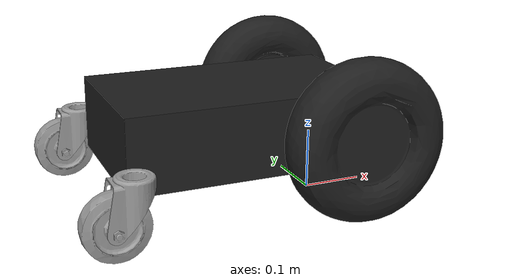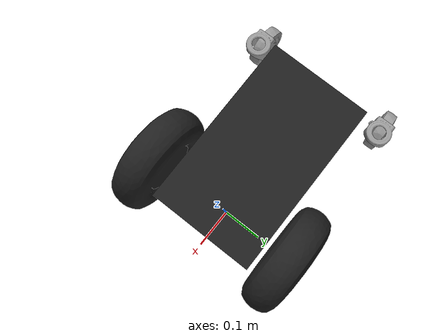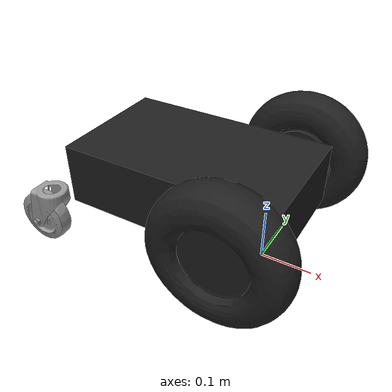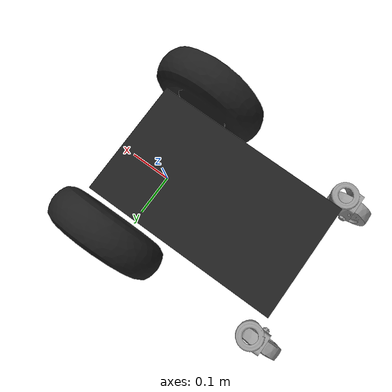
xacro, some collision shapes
<?xml version="1.0" ?>
<robot name="2WD_rover" xmlns:xacro="http://ros.org/wiki/xacro">
  <xacro:include filename="$(find rr_openrover_description)/urdf/common_properties.xacro"/>
  <xacro:include filename="$(find rr_openrover_description)/urdf/2WD_rover.gazebo.xacro"/>

  <link name="base_footprint"/>

  <link name="base_link"/>

  <joint name="base_joint" type="fixed">
    <parent link="base_footprint"/>
    <child link="base_link"/>
    <origin xyz="0 0 0" rpy="0 0 0"/>
  </joint>

  <link name="chassis_link">
    <visual>
      <origin xyz="0 0 0" rpy="${pi / 2} 0 ${pi / 2}"/>
      <geometry>
        <mesh filename="package://rr_openrover_description/meshes/2WD_Rover/2WDCore.stl" scale="0.001 0.001 0.001"/>
      </geometry>
      <material name="dark"/>
    </visual>
    <collision>
      <origin xyz="-0.142 0 0" rpy="0 0 0"/>
      <geometry>
        <box size="0.42 0.25 0.12"/>
      </geometry>
    </collision>
    <inertial>
      <origin xyz="-0.142 0 0" rpy="0 0 0" />
      <mass value="7.5" />
      <inertia ixx="5.914e-2"
               ixy="0.0" iyy="1.713e-1"
               ixz="0.0" iyz="1.815e-3" izz="5.917e-2" />
    </inertial>
  </link>

  <joint name="chassis_joint" type="fixed">
    <parent link="base_link"/>
    <child link="chassis_link"/>
    <origin xyz="0 0 0.14" rpy="0 0 0"/>
  </joint>

  <link name="left_front_wheel_link">
    <visual>
      <origin xyz="0 -0.18 0" rpy="0 0 ${pi / 2}"/>
      <geometry>
        <mesh filename="package://rr_openrover_description/meshes/2WD_Rover/LeftFrontTire.stl" scale="0.001 0.001 0.001"/>
      </geometry>
      <material name="dark"/>
    </visual>
    <collision>
      <origin xyz="0 0 0" rpy="${pi / 2} 0 0"/>
      <geometry>
        <cylinder length="0.07" radius="0.127"/>
      </geometry>
    </collision>
    <inertial>
      <origin xyz="0 0 0" rpy="0 0 0"/>
      <mass value="0.25" />
      <inertia ixx="7.75e-3"
               ixy="0.0" iyy="1.713e-1"
               ixz="0.0" iyz="1.815e-3" izz="5.917e-2" />
    </inertial>
  </link>

  <joint name="left_front_wheel_joint" type="continuous">
    <parent link="chassis_link"/>
    <child link="left_front_wheel_link"/>
    <origin xyz="0 0.18 0" rpy="0 0 0"/>
    <axis xyz="0 1 0" rpy="0 0 0"/>
  </joint>

  <link name="right_front_wheel_link">
    <visual>
      <origin xyz="0 0.18 0" rpy="0 0 ${pi / 2}"/>
      <geometry>
        <mesh filename="package://rr_openrover_description/meshes/2WD_Rover/RightFrontTire.stl" scale="0.001 0.001 0.001"/>
      </geometry>
      <material name="dark"/>
    </visual>
    <collision>
      <origin xyz="0 0 0" rpy="${pi / 2} 0 0"/>
      <geometry>
        <cylinder length="0.07" radius="0.127"/>
      </geometry>
    </collision>
    <inertial>
      <origin xyz="0 0 0" rpy="0 0 0"/>
      <mass value="0.25" />
      <inertia ixx="7.750e-3"
               ixy="0.0" iyy="4.546-3"
               ixz="0.0" iyz="1.478e-8" izz="4.545-3" />
    </inertial>
  </link>

  <joint name="right_front_wheel_joint" type="continuous">
    <parent link="chassis_link"/>
    <child link="right_front_wheel_link"/>
    <origin xyz="0 -0.18 0" rpy="0 0 0"/>
    <axis xyz="0 1 0"/>
  </joint>

  <link name="left_rear_castor_housing_link">
    <visual>
      <origin xyz="0.355 -0.171 0" rpy="${pi / 2} 0 ${pi / 2}"/>
      <geometry>
        <mesh filename="package://rr_openrover_description/meshes/2WD_Rover/LeftRearCastorHousing.stl" scale="0.001 0.001 0.001"/>
      </geometry>ps -aux | grep gazebo | awk $2
      <material name="dark"/>
    </visual>
    <inertial>
      <origin xyz="0 0 0" rpy="0 0 0"/>
      <mass value="0.25" />
      <inertia ixx="4.81e-5"
               ixy="0.0" iyy="2.939e-5"
               ixz="0.0" iyz="1.478e-5" izz="4.914e-5" />
    </inertial>
  </link>

  <joint name="left_rear_castor_housing_joint" type="continuous">
    <parent link="chassis_link"/>
    <child link="left_rear_castor_housing_link"/>
    <origin xyz="-0.355 0.175 0.005" rpy="0 0 0"/>
    <axis xyz="0 0 1"/>
  </joint>

  <link name="left_rear_castor_wheel_link">
    <visual>
      <origin xyz="0.385 -0.170 0.083" rpy="${pi / 2} 0 ${pi / 2}"/>
      <geometry>
        <mesh filename="package://rr_openrover_description/meshes/2WD_Rover/LeftRearCastorWheel.stl" scale="0.001 0.001 0.001"/>
      </geometry>
      <material name="dark"/>
    </visual>
    <collision>
      <origin xyz="0 0 0" rpy="${pi / 2} 0 0"/>
      <geometry>
        <cylinder length="0.0254" radius="0.050"/>
      </geometry>
    </collision>
    <inertial>
      <origin xyz="0 0 0" rpy="0 0 0"/>
      <mass value="0.25" />
      <inertia ixx="2.511e-4"
               ixy="0.0" iyy="2.136-4"
               ixz="0.0" iyz="1.478e-4" izz="1.363e-4" />
    </inertial>
  </link>

  <joint name="left_rear_castor_wheel_joint" type="continuous">
    <parent link="left_rear_castor_housing_link"/>
    <child link="left_rear_castor_wheel_link"/>
    <origin xyz="-0.028 0 -0.08" rpy="0 0 0"/>
    <axis xyz="0 1 0"/>
  </joint>

  <link name="right_rear_castor_housing_link">
    <visual>
      <origin xyz="0.355 0.171 0" rpy="${pi / 2} 0 ${pi / 2}"/>
      <geometry>
        <mesh filename="package://rr_openrover_description/meshes/2WD_Rover/RightRearCastorHousing.stl" scale="0.001 0.001 0.001"/>
      </geometry>
      <material name="dark"/>
    </visual>
    <inertial>
      <origin xyz="0 0 0" rpy="0 0 0"/>
      <mass value="0.25" />
      <inertia ixx="4.81e-5"
               ixy="0.0" iyy="2.939e-5"
               ixz="0.0" iyz="1.478e-5" izz="4.914e-5" />
    </inertial>
  </link>

  <joint name="right_rear_castor_housing_joint" type="continuous">
    <parent link="chassis_link"/>
    <child link="right_rear_castor_housing_link"/>
    <origin xyz="-0.355 -0.175 0.005" rpy="0 0 0"/>
    <axis xyz="0 0 1"/>
  </joint>

  <link name="right_rear_castor_wheel_link">
    <visual>
      <origin xyz="0.385 0.171 0.083" rpy="${pi / 2} 0 ${pi / 2}"/>
      <geometry>
        <mesh filename="package://rr_openrover_description/meshes/2WD_Rover/RightRearCastorWheel.stl" scale="0.001 0.001 0.001"/>
      </geometry>
      <material name="dark"/>
    </visual>
    <collision>
      <origin xyz="0 0 0" rpy="${pi / 2} 0 0"/>
      <geometry>
        <cylinder length="0.0254" radius="0.050"/>
      </geometry>
    </collision>
    <inertial>
      <origin xyz="0 0 0" rpy="0 0 0"/>
      <mass value="0.25" />
      <inertia ixx="2.511e-4"
               ixy="0.0" iyy="2.136-4"
               ixz="0.0" iyz="1.478e-5" izz="1.363e-4" />
    </inertial>
  </link>

  <joint name="right_rear_castor_wheel_joint" type="continuous">
    <parent link="right_rear_castor_housing_link"/>
    <child link="right_rear_castor_wheel_link"/>
    <origin xyz="-0.028 0 -0.08" rpy="0 0 0"/>
    <axis xyz="0 1 0"/>
  </joint>
</robot>
